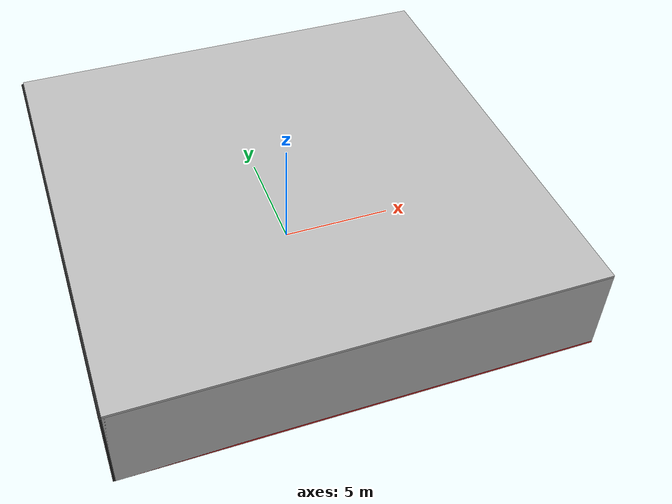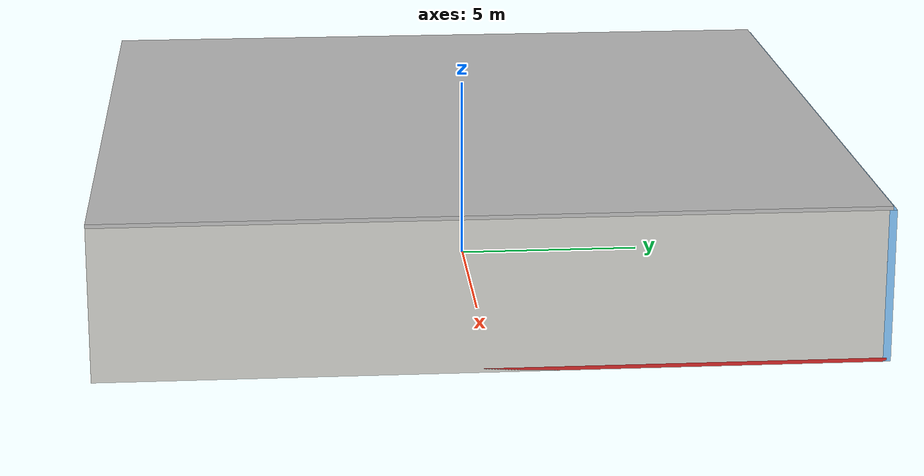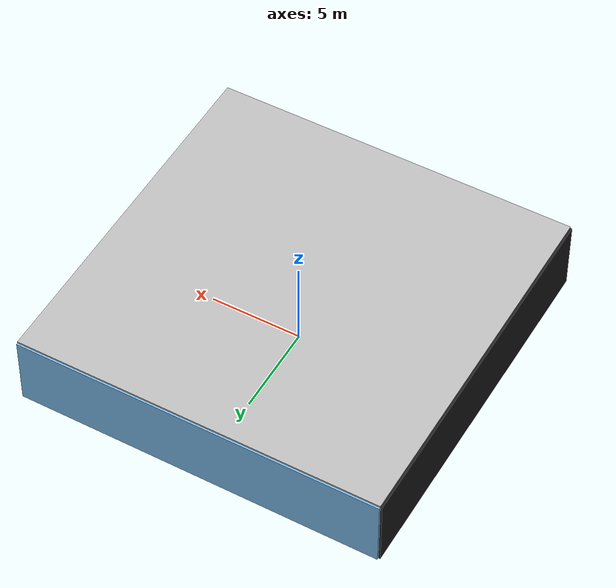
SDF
<sdf version="1.4">
 <world name="default">
  <physics type="ode">
   <max_step_size>0.001</max_step_size>
   <real_time_factor>1</real_time_factor>
   <real_time_update_rate>1000</real_time_update_rate>
   <gravity>0 0 -9.8</gravity>
  </physics>
  <scene><ambient>0.4 0.4 0.4 1</ambient><background>0.7 0.7 0.7 1</background><shadows>1</shadows></scene>
  <model name="Surrounding">
   <static>1</static>
   <link name="Ceiling">
    <collision name="Ceiling_Collision"><geometry><box><size>20 20 0.1</size></box></geometry></collision>
    <visual name="Ceiling_Visual">
     <geometry><box><size>20 20 0.1</size></box></geometry>
     <material>
      <script><uri>file://media/materials/scripts/gazebo.material</uri><name>Gazebo/CloudySky</name></script>
     </material>
    </visual>
    <pose>0 0 4.05 0 0 0</pose>
   </link>
   <link name="Wall_South">
    <collision name="Wall_South_Collision">
     <geometry><box><size>20 0 4</size></box></geometry>
     <pose>0 0 2 0 -0 0</pose>
    </collision>
    <visual name="Wall_South_Visual">
     <pose>0 0 2 0 -0 0</pose>
     <geometry><box><size>20 0 4</size></box></geometry>
     <material>
      <script><uri>file://media/materials/scripts/gazebo.material</uri><name>Gazebo/PioneerBody</name></script>
     </material>
    </visual>
    <velocity_decay><linear>0</linear><angular>0</angular></velocity_decay>
    <pose>0 -10 0 0 -0 0</pose>
   </link>
   <link name="Wall_East">
    <collision name="Wall_21_Collision">
     <geometry><box><size>20 0 4</size></box></geometry>
     <pose>0 0 2 0 -0 0</pose>
    </collision>
    <visual name="Wall_21_Visual">
     <pose>0 0 2 0 -0 0</pose>
     <geometry><box><size>20 0 4</size></box></geometry>
     <material>
      <script><uri>file://media/materials/scripts/gazebo.material</uri><name>Gazebo/CeilingTiled</name></script>
     </material>
    </visual>
    <velocity_decay><linear>0</linear><angular>0</angular></velocity_decay>
    <pose>10 0 0 0 -0 1.5708</pose>
   </link>
   <link name="Wall_North">
    <collision name="Wall_22_Collision">
     <geometry><box><size>20 0.2 4</size></box></geometry>
     <pose>0 0 2 0 -0 0</pose>
    </collision>
    <visual name="Wall_22_Visual">
     <pose>0 0 2 0 -0 0</pose>
     <geometry><box><size>20 0.2 4</size></box></geometry>
     <material>
      <script><uri>file://media/materials/scripts/gazebo.material</uri><name>Gazebo/SkyBlue</name></script>
     </material>
    </visual>
    <velocity_decay><linear>0</linear><angular>0</angular></velocity_decay>
    <pose>0 10 0 0 -0 0</pose>
   </link>
   <link name="Wall_West">
    <collision name="Wall_23_Collision">
     <geometry><box><size>20 0.2 4</size></box></geometry>
     <pose>0 0 2 0 -0 0</pose>
    </collision>
    <visual name="Wall_23_Visual">
     <pose>0 0 2 0 -0 0</pose>
     <geometry><box><size>20 0.2 4</size></box></geometry>
     <material>
      <script><uri>file://media/materials/scripts/gazebo.material</uri><name>Gazebo/FlatBlack</name></script>
     </material>
    </visual>
    <velocity_decay><linear>0</linear><angular>0</angular></velocity_decay>
    <pose>-10 0 0 0 0 -1.5708</pose>
   </link>
   <link name="Ground_link">
    <collision name="collision">
     <pose>0 0 .05 0 -0 0</pose>
     <geometry><box><size>20 20 0.1</size></box></geometry>
    </collision>
    <visual name="visual">
     <pose>0 0 .05 0 -0 0</pose>
     <geometry><box><size>20 20 0.1</size></box></geometry>
     <material>
      <script><uri>file://media/materials/scripts/gazebo.material</uri><name>Gazebo/RedBright</name></script>
     </material>
    </visual>
   </link>
   <static>1</static>
  </model>
  <spherical_coordinates>
   <surface_model>EARTH_WGS84</surface_model>
   <latitude_deg>0</latitude_deg>
   <longitude_deg>0</longitude_deg>
   <elevation>0</elevation>
   <heading_deg>0</heading_deg>
  </spherical_coordinates>
  <light name="lightball_0" type="diffuse">
   <diffuse>0.8 0.8 0.8 1</diffuse>
   <specular>0.2 0.2 0.2 1</specular>
   <attenuation>
    <range>100</range>
    <constant>0.7</constant>
    <linear>0.01</linear>
    <quadratic>0.001</quadratic>
   </attenuation>
   <direction>-0.5 0.1 -0.9</direction>
   <pose>1.44521567289 5.35852103472 1.33653568013 0 0 0</pose>
  </light>
  <light name="lightball_1" type="diffuse">
   <diffuse>0.8 0.8 0.8 1</diffuse>
   <specular>0.2 0.2 0.2 1</specular>
   <attenuation>
    <range>100</range>
    <constant>0.7</constant>
    <linear>0.01</linear>
    <quadratic>0.001</quadratic>
   </attenuation>
   <direction>-0.5 0.1 -0.9</direction>
   <pose>2.85916032806 9.44760100074 2.74789839712 0 0 0</pose>
  </light>
  <light name="lightball_2" type="diffuse">
   <diffuse>0.8 0.8 0.8 1</diffuse>
   <specular>0.2 0.2 0.2 1</specular>
   <attenuation>
    <range>100</range>
    <constant>0.7</constant>
    <linear>0.01</linear>
    <quadratic>0.001</quadratic>
   </attenuation>
   <direction>-0.5 0.1 -0.9</direction>
   <pose>0.992024557379 7.69429030167 3.02765033093 0 0 0</pose>
  </light>
  <include><uri>model://cabinet</uri><pose>-6.84440603918 4.34115842738 0 0 0 1.28910712729</pose></include>
  <include>
   <uri>model://construction_cone</uri>
   <pose>-1.54279705625 4.20107383007 0 0 0 1.51392771904</pose>
  </include>
  <include><uri>model://cabinet</uri><pose>5.56784528368 0.415965555417 0 0 0 0.613461436187</pose></include>
  <include><uri>model://cabinet</uri><pose>7.31396238284 0.423209965185 0 0 0 2.49696368675</pose></include>
  <include><uri>model://cabinet</uri><pose>8.23859807012 4.18129455221 0 0 0 1.30274842634</pose></include>
 </world>
</sdf>

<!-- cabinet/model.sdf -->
<sdf version="1.5">
  <model name="cabinet">
    <static>true</static>
    <link name="cabinet_bottom_plate">
      <inertial>
        <pose>0 0 -1 0 0 0</pose>
        <inertia>
          <ixx>2.050000</ixx>
          <ixy>0</ixy>
          <ixz>0</ixz>
          <iyy>2.050000</iyy>
          <iyz>0</iyz>
          <izz>2.050000</izz>
        </inertia>
        <mass>25.000000</mass>
      </inertial>
      <collision name="cabinet_bottom_plate_geom">
        <pose>0 0 0.010000 0 0 0</pose>
        <geometry>
          <box>
            <size>0.450000 0.450000 0.020000</size>
          </box>
        </geometry>
      </collision>
      <visual name="cabinet_bottom_plate_geom_visual">
        <pose>0 0 0.010000 0 0 0</pose>
        <geometry>
          <box>
            <size>0.450000 0.450000 0.020000</size>
          </box>
        </geometry>
        <material>
          <script>
            <uri>model://media/materials/scripts/gazebo.material</uri>
            <name>Gazebo/Wood</name>
          </script>
        </material>
      </visual>
      <collision name="cabinet_bottom_plate_geom_cabinet_back_plate">
        <pose>0.235000 0 0.510000 0 0 0</pose>
        <geometry>
          <box>
            <size>0.020000 0.450000 1.020000</size>
          </box>
        </geometry>
      </collision>
      <visual name="cabinet_bottom_plate_geom_cabinet_back_plate_visual">
        <pose>0.235000 0 0.510000 0 0 0</pose>
        <geometry>
          <box>
            <size>0.020000 0.450000 1.020000</size>
          </box>
        </geometry>
        <material>
          <script>
            <uri>model://media/materials/scripts/gazebo.material</uri>
            <name>Gazebo/Wood</name>
          </script>
        </material>
      </visual>
      <collision name="cabinet_bottom_plate_geom_cabinet_left_plate">
        <pose>0 0.235000 0.510000 0 0 0</pose>
        <geometry>
          <box>
            <size>0.450000 0.020000 1.020000</size>
          </box>
        </geometry>
      </collision>
      <visual name="cabinet_bottom_plate_geom_cabinet_left_plate_visual">
        <pose>0 0.235000 0.510000 0 0 0</pose>
        <geometry>
          <box>
            <size>0.450000 0.020000 1.020000</size>
          </box>
        </geometry>
        <material>
          <script>
            <uri>model://media/materials/scripts/gazebo.material</uri>
            <name>Gazebo/Wood</name>
          </script>
        </material>
      </visual>
      <collision name="cabinet_bottom_plate_geom_cabinet_middle_plate">
        <pose>0 0 0.510000 0 0 0</pose>
        <geometry>
          <box>
            <size>0.450000 0.450000 0.020000</size>
          </box>
        </geometry>
      </collision>
      <visual name="cabinet_bottom_plate_geom_cabinet_middle_plate_visual">
        <pose>0 0 0.510000 0 0 0</pose>
        <geometry>
          <box>
            <size>0.450000 0.450000 0.020000</size>
          </box>
        </geometry>
        <material>
          <script>
            <uri>model://media/materials/scripts/gazebo.material</uri>
            <name>Gazebo/Wood</name>
          </script>
        </material>
      </visual>
      <collision name="cabinet_bottom_plate_geom_cabinet_right_plate">
        <pose>0 -0.235000 0.510000 0 0 0</pose>
        <geometry>
          <box>
            <size>0.450000 0.020000 1.020000</size>
          </box>
        </geometry>
      </collision>
      <visual name="cabinet_bottom_plate_geom_cabinet_right_plate_visual">
        <pose>0 -0.235000 0.510000 0 0 0</pose>
        <geometry>
          <box>
            <size>0.450000 0.020000 1.020000</size>
          </box>
        </geometry>
        <material>
          <script>
            <uri>model://media/materials/scripts/gazebo.material</uri>
            <name>Gazebo/Wood</name>
          </script>
        </material>
      </visual>
      <collision name="cabinet_bottom_plate_geom_cabinet_top_plate">
        <pose>0 0 1.010000 0 0 0</pose>
        <geometry>
          <box>
            <size>0.450000 0.450000 0.020000</size>
          </box>
        </geometry>
      </collision>
      <visual name="cabinet_bottom_plate_geom_cabinet_top_plate_visual">
        <pose>0 0 1.010000 0 0 0</pose>
        <geometry>
          <box>
            <size>0.450000 0.450000 0.020000</size>
          </box>
        </geometry>
        <material>
          <script>
            <uri>model://media/materials/scripts/gazebo.material</uri>
            <name>Gazebo/Wood</name>
          </script>
        </material>
      </visual>
    </link>
  </model>
</sdf>

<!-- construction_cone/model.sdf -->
<sdf version="1.5">
  <model name="Construction Cone">
    <link name="link">
      <collision name="collision">
        <geometry>
          <mesh>
            <scale>10 10 10</scale>
            <uri>file://isr-testbed/construction_cone/meshes/construction_cone.dae</uri>
          </mesh>
        </geometry>
      </collision>
      <visual name="visual">
        <geometry>
          <mesh>
            <scale>10 10 10</scale>
            <uri>file://isr-testbed/construction_cone/meshes/construction_cone.dae</uri>
          </mesh>
        </geometry>
      </visual>
    </link>
  </model>
</sdf>
